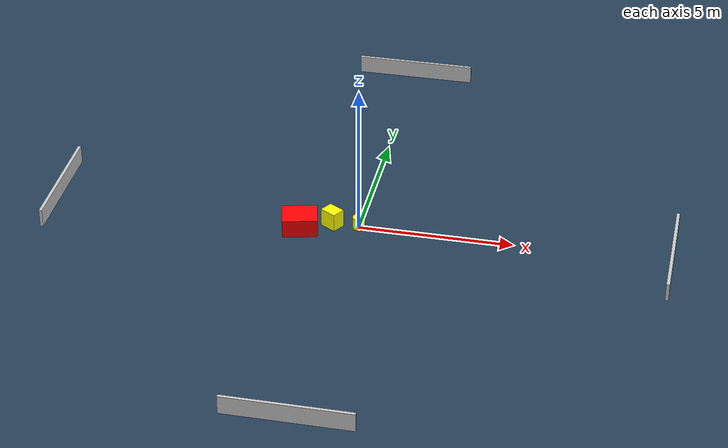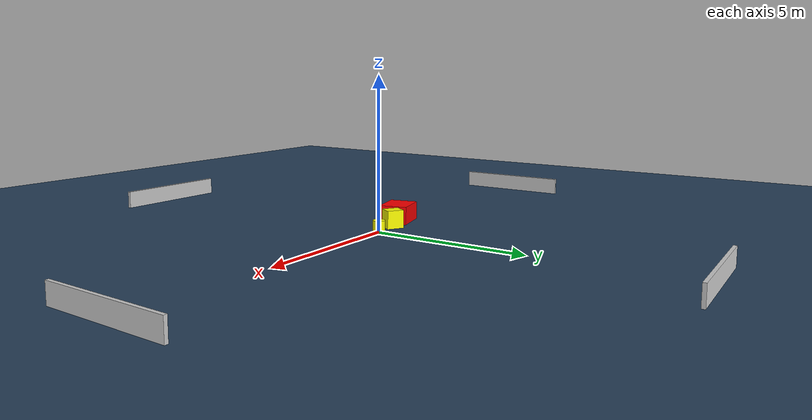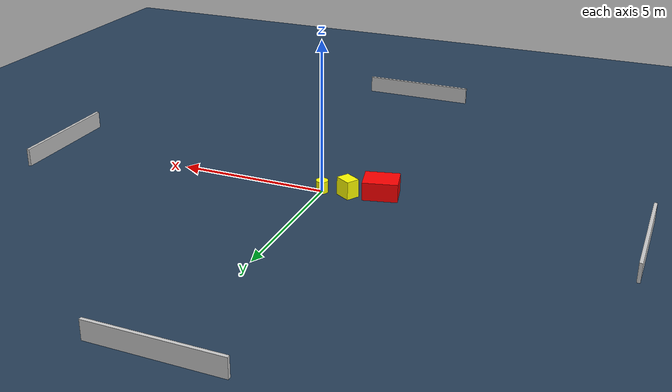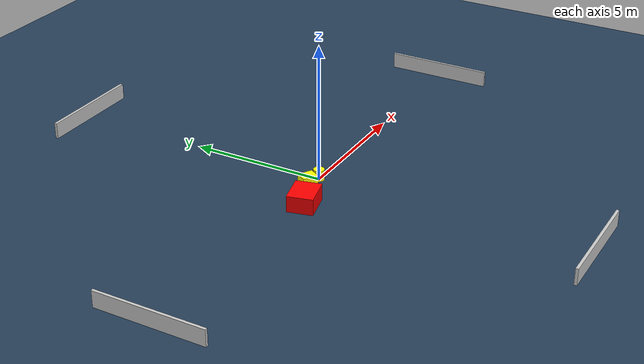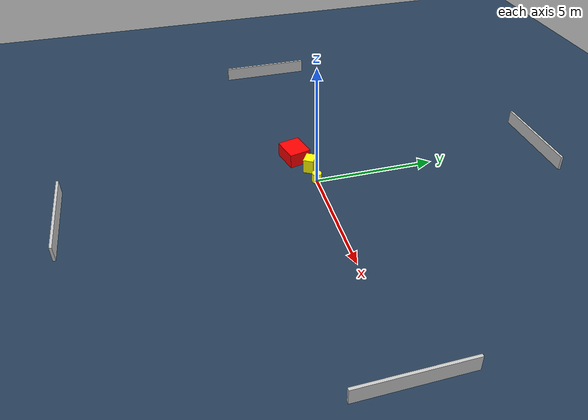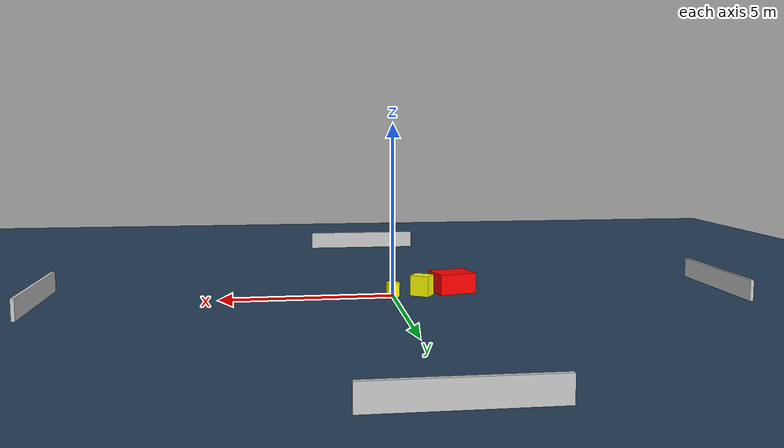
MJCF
<?xml version="1.0" ?>
<mujoco model="generated_environment">
  <option timestep="0.01" integrator="RK4" cone="elliptic"/>
  <default>
    <geom density="1"/>
  </default>
  <asset>
    <texture builtin="gradient" height="3072" name="skybox" rgb1="0.3 0.5 0.7" rgb2="0 0 0" type="skybox" width="512"/>
    <texture builtin="checker" height="300" name="groundplane" rgb1="0.2 0.3 0.4" rgb2="0.1 0.2 0.3" type="2d" width="300"/>
    <material name="groundplane" reflectance="0.2" texrepeat="5 5" texture="groundplane"/>
  </asset>
  <worldbody>
    <light dir="0 0 -1" directional="true" pos="0 0 1.5"/>
    <geom condim="3" friction="0.5 0.005 0.001" material="groundplane" name="floor" pos="0 0 0" size="0 0 0.05" type="plane"/>
    <body name="walls">
      <geom name="wall_1" condim="4" pos="-10.0 0.0 0.3" rgba="0.800000011920929 0.800000011920929 0.800000011920929 1.0" size="0.05 2.0 0.3" type="box"/>
      <geom name="wall_2" condim="4" pos="10.0 0.0 0.3" rgba="0.800000011920929 0.800000011920929 0.800000011920929 1.0" size="0.05 2.0 0.3" type="box"/>
      <geom name="wall_3" condim="4" pos="0.0 -10.0 0.3" rgba="0.800000011920929 0.800000011920929 0.800000011920929 1.0" size="2.0 0.05 0.3" type="box"/>
      <geom name="wall_4" condim="4" pos="0.0 10.0 0.3" rgba="0.800000011920929 0.800000011920929 0.800000011920929 1.0" size="2.0 0.05 0.3" type="box"/>
    </body>
    <body name="robot">
      <joint name="joint_x" type="slide" pos="0 0 0" axis="1 0 0"/>
      <joint name="joint_y" type="slide" pos="0 0 0" axis="0 1 0"/>
      <geom name="robot" type="cylinder" pos="0.0 0.0 0.2" size="0.2 0.2 0.0" mass="5.0" friction="1.0 0.005 0.0001" condim="4" rgba="1.0 1.0 0.0 1.0"/>
    </body>
    <body name="obstacle_1_movable">
      <geom name="obstacle_1_movable" condim="4" pos="-0.8629271233018383 -0.04684148717399017 0.3" euler="0 0 148.4538719360859" friction="0.0 0.005 0.001" rgba="1.0 1.0 0.0 1.0" size="0.28092816841377083 0.22137578144612757 0.3" type="box" mass="0.1"/>
      <joint type="free"/>
    </body>
    <body name="obstacle_2_static">
      <geom name="obstacle_2_static" condim="4" pos="-1.8401099869070736 -0.46811388326494374 0.3" euler="0 0 193.5862761066734" friction="0.0 0.005 0.001" rgba="1.0 0.0 0.0 1.0" size="0.5681322666217796 0.4661531139444048 0.3" type="box"/>
    </body>
  </worldbody>
  <actuator>
    <motor name="actuator_x" joint="joint_x" gear="1" ctrlrange="-1 1"/>
    <motor name="actuator_y" joint="joint_y" gear="1" ctrlrange="-1 1"/>
  </actuator>
</mujoco>
